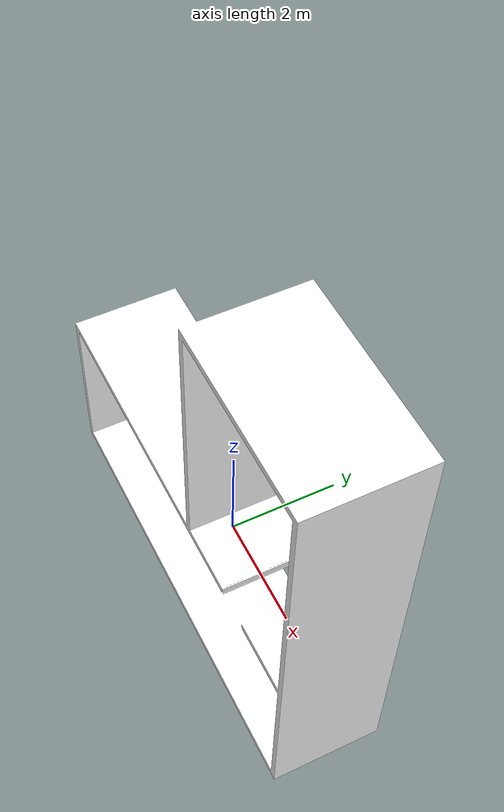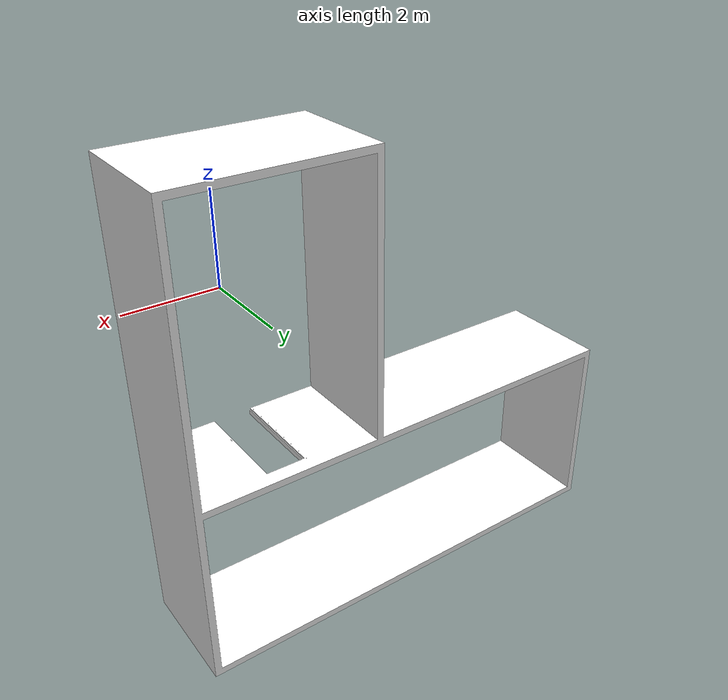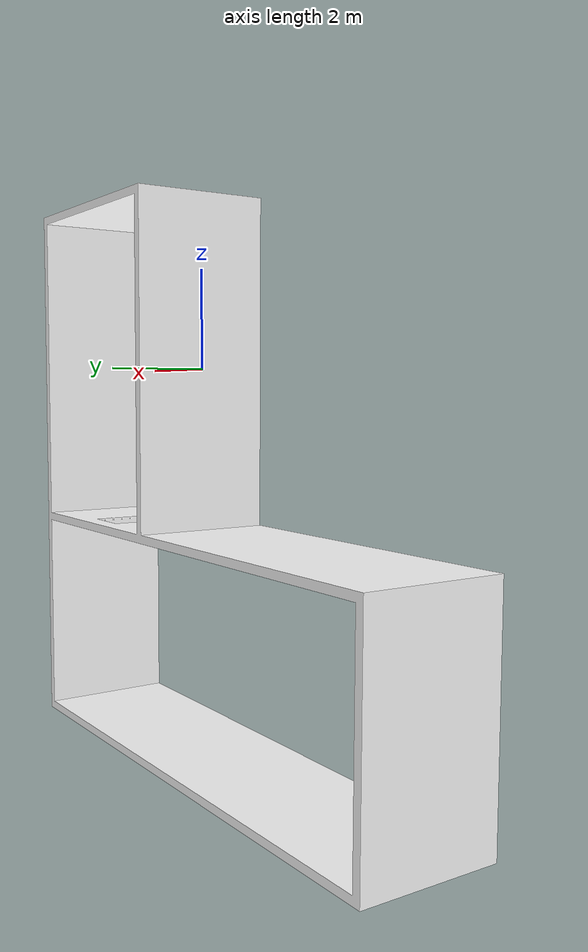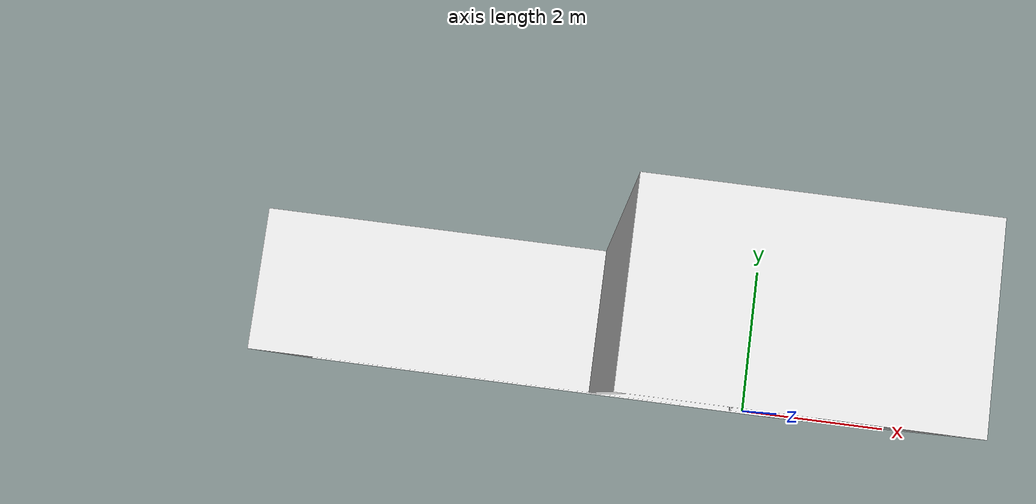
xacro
<?xml version="1.0" encoding="utf-8"?>
<robot xmlns:xacro="http://ros.org/wiki/xacro" name="room">
  <link
    name="room_link">
    <inertial>
      <origin
        xyz="-1.94822112824507 1.25276651029596 -2.90723055226451"
        rpy="0 0 0" />
      <mass
        value="16168.5958343016" />
      <inertia
        ixx="192364.151188655"
        ixy="-86.9106786109994"
        ixz="-65926.2854752906"
        iyy="374286.87183972"
        iyz="4.13676432645725"
        izz="198812.779610138" />
    </inertial>
    <visual>
      <origin
        xyz="0 0 0"
        rpy="0 0 0" />
      <geometry>
        <mesh
          filename="package://innfos_control/gazebo_control/meshes/room_link.STL" />
      </geometry>
      <material
        name="">
        <color
          rgba="1 1 1 1" />
      </material>
    </visual>
    <collision>
      <origin
        xyz="0 0 0"
        rpy="0 0 0" />
      <geometry>
        <mesh
          filename="package://innfos_control/gazebo_control/meshes/room_link.STL" />
      </geometry>
    </collision>
  </link>
</robot>
